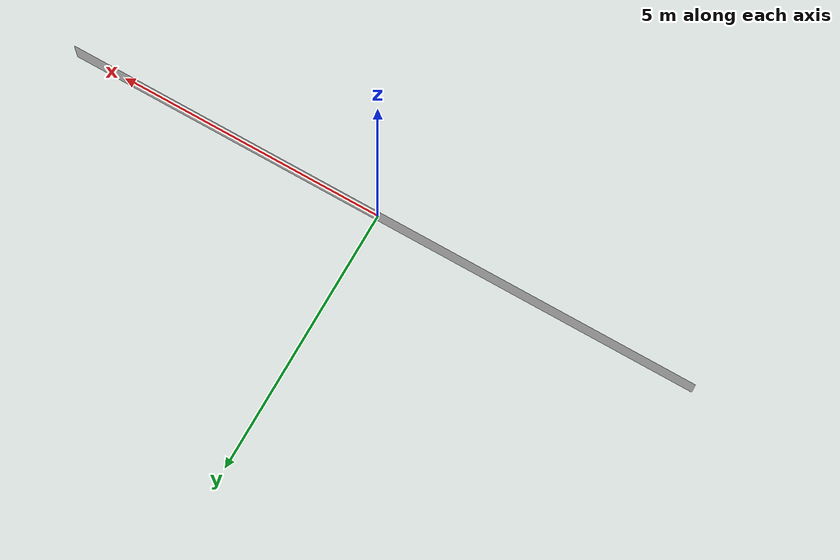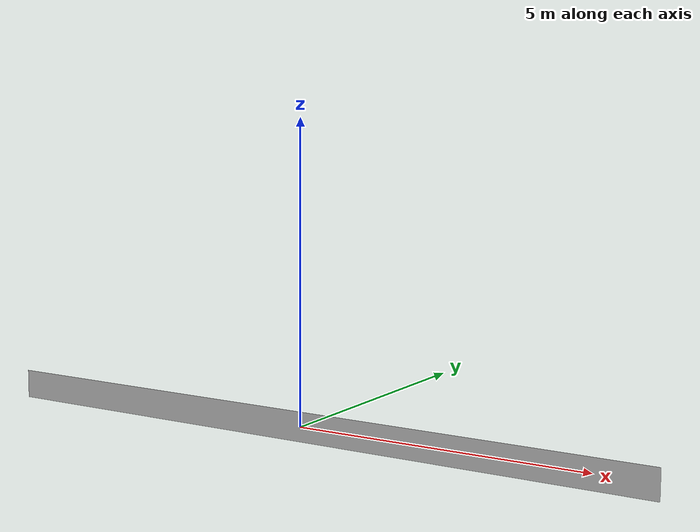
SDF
<?xml version="1.0"?>
<sdf version='1.4'>
  <model name="wall_sides">
  <link name='wall_sides'>
    <pose>0 0 0 0 0 0</pose>
    <inertial>
      <inertia>
        <ixx>1e-6</ixx>
        <ixy>0</ixy>
        <ixz>0</ixz>
        <iyy>1e-6</iyy>
        <iyz>0</iyz>
        <izz>1e-6</izz>
      </inertia>
      <mass>1e-6</mass>
    </inertial>
    <collision name='collision'>
      <pose>0 0 0 0 0 0</pose>
      <geometry>
        <box>
          <size>12 1e-6 0.5</size>
        </box>
      </geometry>
    </collision>
    <visual name='visual'>
      <geometry>
        <box>
          <size>12 1e-6 0.5</size>
        </box>
      </geometry>
      <material>
        <script>
          <uri>model://wall_side/materials/scripts</uri>
          <uri>model://wall_side/materials/textures</uri>
          <name>wall_side</name>
        </script>
      </material>
    </visual>
  </link>
</model>
</sdf>
